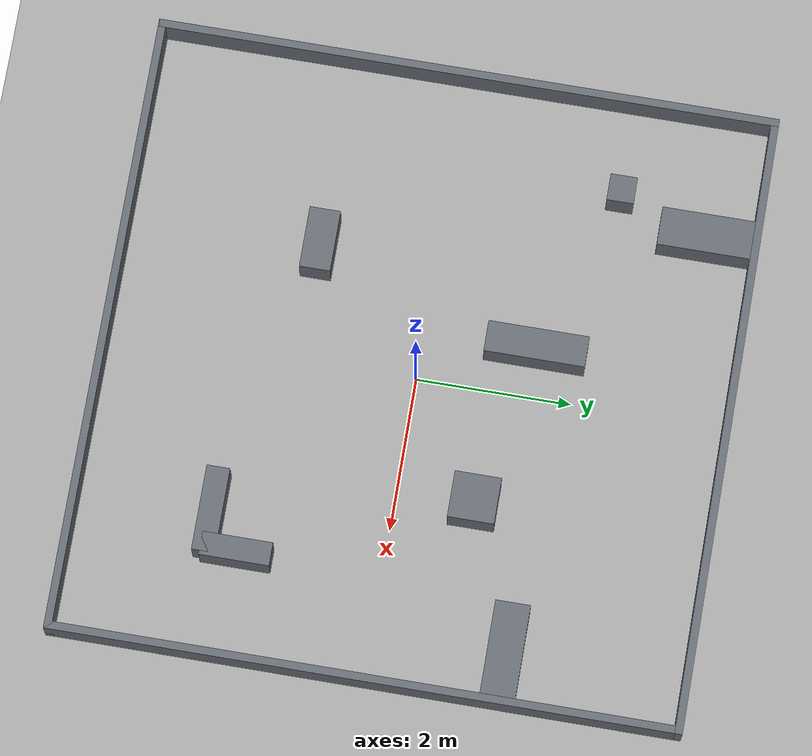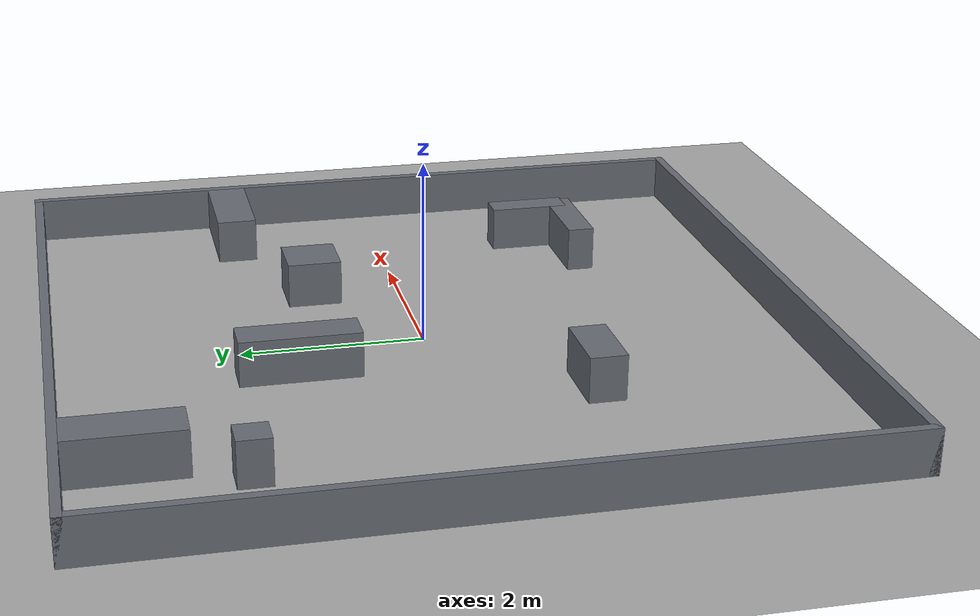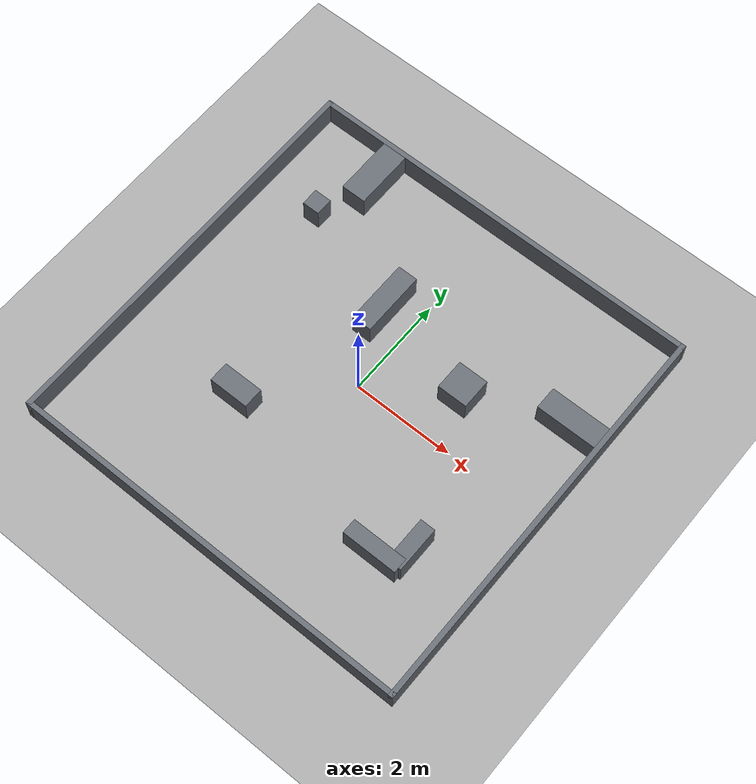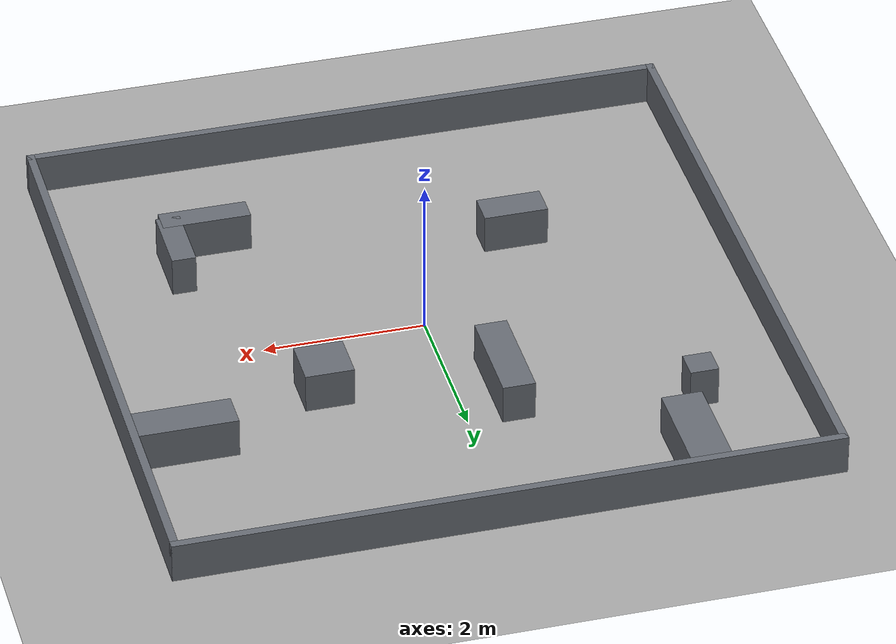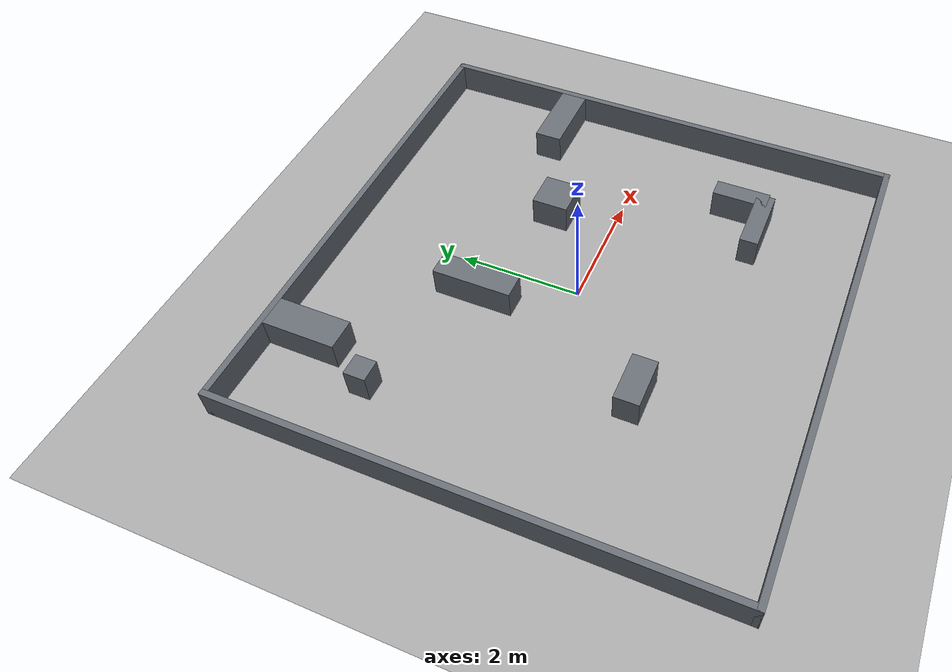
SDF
<?xml version="1.0"?>
<sdf version="1.7">
  <world name="training">
    <plugin filename="ignition-gazebo-physics-system" name="ignition::gazebo::systems::Physics"/>
    <plugin filename="ignition-gazebo-user-commands-system" name="ignition::gazebo::systems::UserCommands"/>
    <plugin filename="ignition-gazebo-scene-broadcaster-system" name="ignition::gazebo::systems::SceneBroadcaster"/>
    <plugin filename="ignition-gazebo-sensors-system" name="ignition::gazebo::systems::Sensors">
      <render_engine>ogre2</render_engine>
    </plugin>
    <plugin filename="ignition-gazebo-imu-system" name="ignition::gazebo::systems::Imu"/>

    <gravity>0 0 -9.80665</gravity>
    <magnetic_field>0 0 0</magnetic_field>
    <atmosphere type="adiabatic"/>

    <light name="sun" type="directional">
      <cast_shadows>true</cast_shadows>
      <pose>0 0 10 0 0 0</pose>
      <diffuse>0.8 0.8 0.8 1</diffuse>
      <specular>0.2 0.2 0.2 1</specular>
      <attenuation>
        <range>1000</range>
        <constant>0.9</constant>
        <linear>0.01</linear>
        <quadratic>0.001</quadratic>
      </attenuation>
      <direction>-0.5 0.1 -0.9</direction>
    </light>

    <model name="ground_plane">
      <static>true</static>
      <link name="link">
        <collision name="collision">
          <geometry><plane><normal>0 0 1</normal><size>20 20</size></plane></geometry>
        </collision>
        <visual name="visual">
          <geometry><plane><normal>0 0 1</normal><size>20 20</size></plane></geometry>
          <material>
            <ambient>0.65 0.65 0.65 1</ambient>
            <diffuse>0.65 0.65 0.65 1</diffuse>
          </material>
        </visual>
      </link>
    </model>

    <model name="wall_north">
      <static>true</static>
      <pose>0 4.0 0.25 0 0 0</pose>
      <link name="link">
        <collision name="collision">
          <geometry><box><size>8.1 0.1 0.5</size></box></geometry>
        </collision>
        <visual name="visual">
          <geometry><box><size>8.1 0.1 0.5</size></box></geometry>
          <material>
            <ambient>0.4 0.42 0.45 1</ambient>
            <diffuse>0.4 0.42 0.45 1</diffuse>
          </material>
        </visual>
      </link>
    </model>
    <model name="wall_south">
      <static>true</static>
      <pose>0 -4.0 0.25 0 0 0</pose>
      <link name="link">
        <collision name="collision">
          <geometry><box><size>8.1 0.1 0.5</size></box></geometry>
        </collision>
        <visual name="visual">
          <geometry><box><size>8.1 0.1 0.5</size></box></geometry>
          <material>
            <ambient>0.4 0.42 0.45 1</ambient>
            <diffuse>0.4 0.42 0.45 1</diffuse>
          </material>
        </visual>
      </link>
    </model>
    <model name="wall_east">
      <static>true</static>
      <pose>4.0 0 0.25 0 0 0</pose>
      <link name="link">
        <collision name="collision">
          <geometry><box><size>0.1 8.1 0.5</size></box></geometry>
        </collision>
        <visual name="visual">
          <geometry><box><size>0.1 8.1 0.5</size></box></geometry>
          <material>
            <ambient>0.4 0.42 0.45 1</ambient>
            <diffuse>0.4 0.42 0.45 1</diffuse>
          </material>
        </visual>
      </link>
    </model>
    <model name="wall_west">
      <static>true</static>
      <pose>-4.0 0 0.25 0 0 0</pose>
      <link name="link">
        <collision name="collision">
          <geometry><box><size>0.1 8.1 0.5</size></box></geometry>
        </collision>
        <visual name="visual">
          <geometry><box><size>0.1 8.1 0.5</size></box></geometry>
          <material>
            <ambient>0.4 0.42 0.45 1</ambient>
            <diffuse>0.4 0.42 0.45 1</diffuse>
          </material>
        </visual>
      </link>
    </model>
    <model name="obstacle_1">
      <static>true</static>
      <pose>1.5 1.0 0.25 0 0 0</pose>
      <link name="link">
        <collision name="collision">
          <geometry><box><size>0.6 0.6 0.5</size></box></geometry>
        </collision>
        <visual name="visual">
          <geometry><box><size>0.6 0.6 0.5</size></box></geometry>
          <material>
            <ambient>0.4 0.42 0.45 1</ambient>
            <diffuse>0.4 0.42 0.45 1</diffuse>
          </material>
        </visual>
      </link>
    </model>
    <model name="obstacle_2">
      <static>true</static>
      <pose>-1.5 -1.5 0.25 0 0 0</pose>
      <link name="link">
        <collision name="collision">
          <geometry><box><size>0.8 0.4 0.5</size></box></geometry>
        </collision>
        <visual name="visual">
          <geometry><box><size>0.8 0.4 0.5</size></box></geometry>
          <material>
            <ambient>0.4 0.42 0.45 1</ambient>
            <diffuse>0.4 0.42 0.45 1</diffuse>
          </material>
        </visual>
      </link>
    </model>
    <model name="north_wall_landmark">
      <static>true</static>
      <pose>-2.4 3.35 0.25 0 0 0</pose>
      <link name="link">
        <collision name="collision">
          <geometry><box><size>0.5 1.2 0.5</size></box></geometry>
        </collision>
        <visual name="visual">
          <geometry><box><size>0.5 1.2 0.5</size></box></geometry>
          <material>
            <ambient>0.4 0.42 0.45 1</ambient>
            <diffuse>0.4 0.42 0.45 1</diffuse>
          </material>
        </visual>
      </link>
    </model>
    <model name="east_wall_landmark">
      <static>true</static>
      <pose>3.35 1.7 0.25 0 0 0</pose>
      <link name="link">
        <collision name="collision">
          <geometry><box><size>1.2 0.45 0.5</size></box></geometry>
        </collision>
        <visual name="visual">
          <geometry><box><size>1.2 0.45 0.5</size></box></geometry>
          <material>
            <ambient>0.4 0.42 0.45 1</ambient>
            <diffuse>0.4 0.42 0.45 1</diffuse>
          </material>
        </visual>
      </link>
    </model>
    <model name="west_vertical_landmark">
      <static>true</static>
      <pose>-0.6 1.45 0.25 0 0 0</pose>
      <link name="link">
        <collision name="collision">
          <geometry><box><size>0.4 1.3 0.5</size></box></geometry>
        </collision>
        <visual name="visual">
          <geometry><box><size>0.4 1.3 0.5</size></box></geometry>
          <material>
            <ambient>0.4 0.42 0.45 1</ambient>
            <diffuse>0.4 0.42 0.45 1</diffuse>
          </material>
        </visual>
      </link>
    </model>
    <model name="northwest_pillar">
      <static>true</static>
      <pose>-2.8 2.2 0.25 0 0 0</pose>
      <link name="link">
        <collision name="collision">
          <geometry><box><size>0.35 0.35 0.5</size></box></geometry>
        </collision>
        <visual name="visual">
          <geometry><box><size>0.35 0.35 0.5</size></box></geometry>
          <material>
            <ambient>0.4 0.42 0.45 1</ambient>
            <diffuse>0.4 0.42 0.45 1</diffuse>
          </material>
        </visual>
      </link>
    </model>
    <model name="southeast_landmark_horizontal">
      <static>true</static>
      <pose>2.2 -2.25 0.25 0 0 0</pose>
      <link name="link">
        <collision name="collision">
          <geometry><box><size>1.1 0.3 0.5</size></box></geometry>
        </collision>
        <visual name="visual">
          <geometry><box><size>1.1 0.3 0.5</size></box></geometry>
          <material>
            <ambient>0.4 0.42 0.45 1</ambient>
            <diffuse>0.4 0.42 0.45 1</diffuse>
          </material>
        </visual>
      </link>
    </model>
    <model name="southeast_landmark_vertical">
      <static>true</static>
      <pose>2.65 -1.85 0.25 0 0 0</pose>
      <link name="link">
        <collision name="collision">
          <geometry><box><size>0.3 0.9 0.5</size></box></geometry>
        </collision>
        <visual name="visual">
          <geometry><box><size>0.3 0.9 0.5</size></box></geometry>
          <material>
            <ambient>0.4 0.42 0.45 1</ambient>
            <diffuse>0.4 0.42 0.45 1</diffuse>
          </material>
        </visual>
      </link>
    </model>
  </world>
</sdf>
